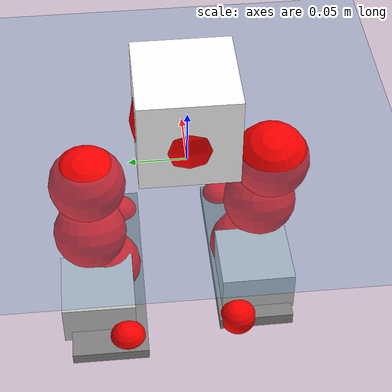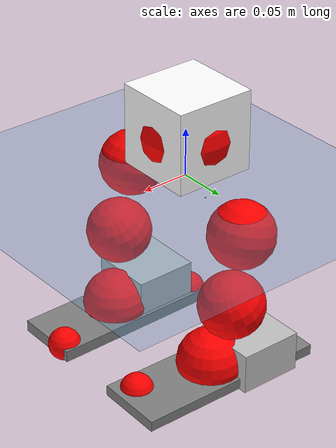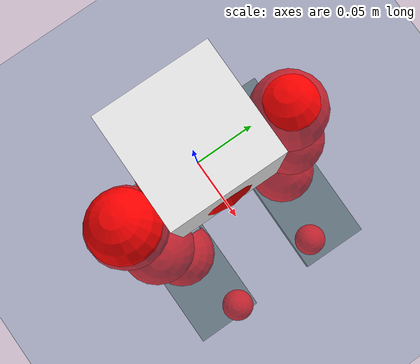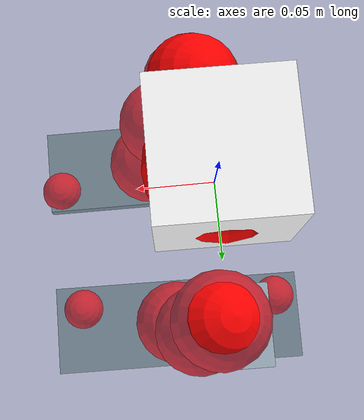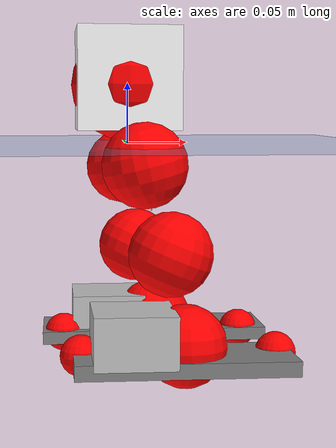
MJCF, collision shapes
<mujoco model="pi_12dof_release_v1">
  <compiler angle="radian" assetdir="assets" balanceinertia="true" inertiafromgeom="false"/>

  <option timestep="0.005" density="1.2" viscosity="2e-05"/>

  <size nkey="1"/>

  <visual>
    <quality shadowsize="8192"/>
    <map shadowclip="0.5"/>
  </visual>

  <default>
    <default class="/">
      <joint armature="0.01" damping="0.01" frictionloss="0.01"/>
      <geom contype="0" conaffinity="0" group="1" solref="-1000 -80"/>
      <site size="0.01 0.005 0.005" group="5"/>
      <general forcelimited="true" biastype="affine" gainprm="20" biasprm="0 -20 -0.5"/>
      <default class="foot">
        <geom size="0.0845 0.036 0.005" type="box" condim="6" group="4" priority="1" friction="0.9 0.2 0.2" solimp="0.015 1 0.005"/>
      </default>
      <default class="reward_collision_sphere">
        <geom group="5" rgba="1 0 0 1"/>
      </default>
    </default>
  </default>

  <asset>
    <texture type="skybox" colorspace="auto" name="//unnamed_texture_0" builtin="gradient" rgb1="0.95 0.95 0.95" rgb2="0.95 0.95 0.95" width="100" height="600"/>
    <texture type="2d" colorspace="auto" name="texplane" builtin="checker" rgb1="0.345 0.575 0.748" rgb2="0.345 0.575 0.748" markrgb="1 1 1" width="512" height="512"/>
    <material name="MatPlane" class="/" texture="texplane" texuniform="true" texrepeat="2 2" specular="0.9"/>
    <mesh name="baselink_1" class="/" file="baselink_1.STL"/>
    <mesh name="r_hip_pitch_link" class="/" file="r_hip_pitch_link.STL"/>
    <mesh name="r_hip_roll_link" class="/" file="r_hip_roll_link.STL"/>
    <mesh name="r_thigh_link" class="/" file="r_thigh_link.STL"/>
    <mesh name="r_calf_link" class="/" file="r_calf_link.STL"/>
    <mesh name="r_ankle_pitch_link" class="/" file="r_ankle_pitch_link.STL"/>
    <mesh name="r_ankle_roll_link" class="/" file="r_ankle_roll_link.STL"/>
    <mesh name="l_hip_pitch_link" class="/" file="l_hip_pitch_link.STL"/>
    <mesh name="l_hip_roll_link" class="/" file="l_hip_roll_link.STL"/>
    <mesh name="l_thigh_link" class="/" file="l_thigh_link.STL"/>
    <mesh name="l_calf_link" class="/" file="l_calf_link.STL"/>
    <mesh name="l_ankle_pitch_link" class="/" file="l_ankle_pitch_link.STL"/>
    <mesh name="l_ankle_roll_link" class="/" file="l_ankle_roll_link.STL"/>
  </asset>

  <worldbody>
    <geom name="floor" class="/" size="100 100 0.125" type="plane" group="0" material="MatPlane"/>
    <light name="toplight_shadow" class="/" pos="0 0 5" dir="0.0990148 0.0990148 -0.990148" type="directional" ambient="0.04 0.04 0.04" diffuse="0.55 0.55 0.55" specular="0.12 0.12 0.12"/>
    <light name="toplight_fill" class="/" pos="0 0 5" dir="0.0990148 0.0990148 -0.990148" type="directional" castshadow="false" ambient="0.04 0.04 0.04" diffuse="0.3 0.3 0.3" specular="0.08 0.08 0.08"/>
    <body name="trunk" pos="-0.00056266 0.00143681 0.0126989" quat="0.999983 -0.00336217 0.0022933 -0.00418995">
      <inertial pos="0.00329039 -0.00996644 0.0216237" quat="0.66735 0.0335459 0.0449855 0.742627" mass="1.18586" diaginertia="0.0191342 0.0030803 0.000115077"/>
      <joint name="//unnamed_joint_0" type="free"/>
      <geom name="//unnamed_geom_1" class="/" type="mesh" density="0" rgba="1 1 1 1" mesh="baselink_1"/>
      <geom name="//unnamed_geom_2" class="/" size="0.0420567 0.0420567 0.0420567" pos="0 0 0.0404009" type="box" rgba="1 1 1 1"/>
      <geom name="//unnamed_geom_3" class="reward_collision_sphere" size="0.0462624" pos="0 0 0.0353508"/>
      <site name="imu" class="/" pos="-0.00803215 -0.033947 0.046394" size="0.00841135"/>
      <camera name="track" class="/" pos="0 -1.66645 0" quat="0.707107 0.707107 0 0" mode="trackcom"/>
      <camera name="ego_camera" class="/" pos="0.0888874 0 0.0909021" quat="-0.5 -0.5 0.5 0.5"/>
      <body name="r_hip_pitch_link" pos="-0.00330106 -0.0231354 -0.0212126" quat="0.992185 0.000122119 -0.124779 -1.35008e-05">
        <inertial pos="0.0122329 -0.0469177 0.0121267" quat="-0.0408802 0.74491 -0.0168784 0.665697" mass="0.236497" diaginertia="0.000245042 4.42627e-05 2.96359e-06"/>
        <joint name="r_hip_pitch_joint" class="/" pos="0 0 0" axis="0.0211947 -0.999773 0.00238964" stiffness="0.0146782" range="-1.77906 1.30213" armature="0.00849929" damping="0.0227728" frictionloss="0.00792416"/>
        <geom name="//unnamed_geom_4" class="/" type="mesh" density="0" rgba="0.75294 0.75294 0.75294 1" mesh="r_hip_pitch_link"/>
        <geom name="//unnamed_geom_5" class="/" size="0.000420567 0.000420567 0.000420567" type="box" rgba="0.75294 0.75294 0.75294 1"/>
        <body name="r_hip_roll_link" pos="0.0099242 -0.0523421 -0.00903829" quat="0.999999 0.00104598 0.000263742 0.000155391">
          <inertial pos="0.00218714 0.000447934 -0.0318383" quat="0.708095 -0.0874697 -0.0677416 0.697397" mass="0.254514" diaginertia="0.000864658 0.000125927 5.35314e-06"/>
          <joint name="r_hip_roll_joint" class="/" pos="0 0 0" axis="-0.999107 -0.0385084 0.0174125" stiffness="0.00356078" range="-0.091379 0.484084" armature="0.0140267" damping="0.00721666" frictionloss="0.00543193"/>
          <geom name="//unnamed_geom_6" class="/" type="mesh" density="0" rgba="0.75294 0.75294 0.75294 1" mesh="r_hip_roll_link"/>
          <geom name="//unnamed_geom_7" class="/" size="0.000420567 0.000420567 0.000420567" type="box" rgba="0.75294 0.75294 0.75294 1"/>
          <geom name="//unnamed_geom_8" class="reward_collision_sphere" size="0.0336454"/>
          <body name="r_thigh_link" pos="-0.00355822 0.00156002 -0.0345438" quat="0.999999 0.000169275 5.13707e-05 -0.00118123">
            <inertial pos="0.0139022 0.0129907 -0.0258691" quat="0.73552 0.677496 0.00109282 0.00276574" mass="0.0674403" diaginertia="0.00032976 3.75019e-05 1.84493e-06"/>
            <joint name="r_thigh_joint" class="/" pos="0 0 0" axis="-0.00600155 0.000846472 -0.999982" range="-0.186133 0.392123" armature="0.013329" damping="0" frictionloss="0.0089404"/>
            <geom name="//unnamed_geom_9" class="/" type="mesh" density="0" rgba="0.75294 0.75294 0.75294 1" mesh="r_thigh_link"/>
            <geom name="//unnamed_geom_10" class="/" size="0.000420567 0.000420567 0.000420567" type="box" rgba="0.75294 0.75294 0.75294 1"/>
            <body name="r_calf_link" pos="0.00646856 0.00240734 -0.0380651" quat="0.946427 -0.00517507 0.322874 0.00141915">
              <inertial pos="0.00406998 0.000149979 -0.0323832" quat="0.997759 -0.0551544 -0.0378786 0.00081868" mass="0.423014" diaginertia="0.0084294 0.00144115 5.9141e-06"/>
              <joint name="r_calf_joint" class="/" pos="0 0 0" axis="-0.0116185 -0.999914 0.00606669" stiffness="0.0160729" range="-1.67617 0.525675" armature="0.00846807" damping="0.0207505" frictionloss="0.0084384"/>
              <geom name="//unnamed_geom_11" class="/" type="mesh" density="0" rgba="0.75294 0.75294 0.75294 1" mesh="r_calf_link"/>
              <geom name="//unnamed_geom_12" class="/" size="0.000420567 0.000420567 0.000420567" type="box" rgba="0.75294 0.75294 0.75294 1"/>
              <geom name="//unnamed_geom_13" class="reward_collision_sphere" size="0.0336454"/>
              <body name="r_ankle_pitch_link" pos="-0.000723741 0.00697269 -0.0713927" quat="0.979828 -0.00120686 -0.199832 0.00191393">
                <inertial pos="0.0110524 0.00376762 0.00352013" quat="0.0143925 0.712374 -0.00555321 0.701631" mass="0.0918999" diaginertia="0.000721045 9.89133e-05 3.65265e-06"/>
                <joint name="r_ankle_pitch_joint" class="/" pos="0 0 0" axis="0.00179021 -0.999311 -0.0370738" range="-1.17147 0.503731" armature="0.0102813" damping="0" frictionloss="0.00795589"/>
                <geom name="//unnamed_geom_14" class="/" type="mesh" density="0" rgba="0.75294 0.75294 0.75294 1" mesh="r_ankle_pitch_link"/>
                <geom name="//unnamed_geom_15" class="/" size="0.0328043 0.0336454 0.0210284" type="box" rgba="0.75294 0.75294 0.75294 1"/>
                <body name="r_ankle_roll_link" pos="0.101553 0.00296499 0.000191694" quat="1 0.000166229 -0.000119108 -0.000940504">
                  <inertial pos="-0.0256958 0.0115167 -0.0168279" quat="0.596436 0.450364 0.384337 0.541961" mass="0.357786" diaginertia="0.00300537 0.000410194 1.16221e-05"/>
                  <joint name="r_ankle_roll_joint" class="/" pos="0 0 0" axis="-0.999979 0.00254919 -0.00601965" range="0.121961 0.0146254" armature="0.0129501" damping="0.0283201" frictionloss="0.0133786"/>
                  <geom name="//unnamed_geom_16" class="/" type="mesh" density="0" rgba="0.75294 0.75294 0.75294 1" mesh="r_ankle_roll_link"/>
                  <geom name="//unnamed_geom_17" class="/" type="mesh" rgba="0.75294 0.75294 0.75294 1" mesh="r_ankle_roll_link"/>
                  <geom name="right_foot" class="foot" size="0.0882902 0.0342097 0.00615755" pos="-0.0604434 0 -0.0222205"/>
                  <geom name="//unnamed_geom_19" class="reward_collision_sphere" size="0.0336454" pos="-0.0592582 0 -0.0101002"/>
                  <geom name="//unnamed_geom_20" class="reward_collision_sphere" size="0.0168227" pos="0.0177775 0.0166645 -0.0202005"/>
                  <geom name="//unnamed_geom_21" class="reward_collision_sphere" size="0.0168227" pos="-0.14222 0.0166645 -0.0202005"/>
                  <site name="right_foot" class="foot" pos="-0.0604434 0 -0.0222205" size="0.00841135"/>
                </body>
              </body>
            </body>
          </body>
        </body>
      </body>
      <body name="l_hip_pitch_link" pos="-0.000680048 0.027457 -0.0250911" quat="0.992101 -0.00115009 -0.12543 0.000995483">
        <inertial pos="0.00430474 0.0564861 0.0126041" quat="-0.0556313 0.710767 0.0175572 0.701004" mass="0.252242" diaginertia="0.000348124 4.31581e-05 3.99641e-06"/>
        <joint name="l_hip_pitch_joint" class="/" pos="0 0 0" axis="-0.0126276 0.998632 -0.0507454" stiffness="0.0424421" range="-0.998144 1.87328" armature="0.00822842" damping="0.0509834" frictionloss="0.00583166"/>
        <geom name="//unnamed_geom_22" class="/" type="mesh" density="0" rgba="0.75294 0.75294 0.75294 1" mesh="l_hip_pitch_link"/>
        <geom name="//unnamed_geom_23" class="/" size="0.000420567 0.000420567 0.000420567" type="box" rgba="0.75294 0.75294 0.75294 1"/>
        <body name="l_hip_roll_link" pos="0.000757829 0.0577883 -0.0123704" quat="0.999991 -0.000197906 0.00430021 0.000216062">
          <inertial pos="-0.0158784 0.00882921 -0.0174375" quat="0.699011 -0.0753453 -0.0766694 0.706986" mass="0.189099" diaginertia="0.000549115 9.10696e-05 3.13378e-06"/>
          <joint name="l_hip_roll_joint" class="/" pos="0 0 0" axis="-0.999998 -0.00154235 -0.000967684" stiffness="0.0125163" range="-0.504828 0.252463" armature="0.0115821" damping="0" frictionloss="0.0085191"/>
          <geom name="//unnamed_geom_24" class="/" type="mesh" density="0" rgba="0.75294 0.75294 0.75294 1" mesh="l_hip_roll_link"/>
          <geom name="//unnamed_geom_25" class="/" size="0.000420567 0.000420567 0.000420567" type="box" rgba="0.75294 0.75294 0.75294 1"/>
          <geom name="//unnamed_geom_26" class="reward_collision_sphere" size="0.0336454"/>
          <body name="l_thigh_link" pos="0.00695595 0.00141862 -0.0276659" quat="0.999989 0.00137124 -0.00329207 -0.00300587">
            <inertial pos="0.0123592 -0.009116 -0.0110932" quat="0.66418 0.745592 0.00415001 -0.0542357" mass="0.0747783" diaginertia="0.00032689 4.51299e-05 1.97296e-06"/>
            <joint name="l_thigh_joint" class="/" pos="0 0 0" axis="0.00168728 0.000532842 -0.999998" stiffness="0.00933825" range="-0.623763 0.309129" armature="0.00993495" damping="0.0186027" frictionloss="0.00289874"/>
            <geom name="//unnamed_geom_27" class="/" type="mesh" density="0" rgba="0.75294 0.75294 0.75294 1" mesh="l_thigh_link"/>
            <geom name="//unnamed_geom_28" class="/" size="0.000420567 0.000420567 0.000420567" type="box" rgba="0.75294 0.75294 0.75294 1"/>
            <body name="l_calf_link" pos="-0.013777 0.000225027 -0.0464535" quat="0.947668 1.31984e-05 0.319256 6.35279e-05">
              <inertial pos="0.0100202 0.0101764 -0.0396908" quat="0.998273 -0.0337162 -0.0144226 0.0458927" mass="0.478283" diaginertia="0.00588822 0.00120051 4.45084e-06"/>
              <joint name="l_calf_joint" class="/" pos="0 0 0" axis="0.0311092 0.999503 -0.00518698" stiffness="0.0496387" range="-0.437718 1.42109" armature="0.00746612" damping="0.0451819" frictionloss="0.00523194"/>
              <geom name="//unnamed_geom_29" class="/" type="mesh" density="0" rgba="0.75294 0.75294 0.75294 1" mesh="l_calf_link"/>
              <geom name="//unnamed_geom_30" class="/" size="0.000420567 0.000420567 0.000420567" type="box" rgba="0.75294 0.75294 0.75294 1"/>
              <geom name="//unnamed_geom_31" class="reward_collision_sphere" size="0.0336454"/>
              <body name="l_ankle_pitch_link" pos="0.000738627 -0.00320236 -0.0685297" quat="0.980042 0.000220123 -0.19879 -7.39325e-05">
                <inertial pos="0.000732353 0.00548306 0.0109652" quat="-0.0201327 0.716376 0.0335359 0.696617" mass="0.127196" diaginertia="0.00065173 9.11403e-05 3.98442e-06"/>
                <joint name="l_ankle_pitch_joint" class="/" pos="0 0 0" axis="0.00138238 0.999998 0.0014225" range="-0.350791 1.31663" armature="0.0107964" damping="0.072436" frictionloss="0.0123685"/>
                <geom name="//unnamed_geom_32" class="/" type="mesh" density="0" rgba="0.75294 0.75294 0.75294 1" mesh="l_ankle_pitch_link"/>
                <geom name="//unnamed_geom_33" class="/" size="0.0328043 0.0336454 0.0210284" type="box" rgba="0.75294 0.75294 0.75294 1"/>
                <body name="l_ankle_roll_link" pos="0.100955 -0.00900098 0.00863022" quat="0.999976 -0.00606713 -0.00288035 -0.00166854">
                  <inertial pos="-0.0319362 -0.00141652 -0.00818214" quat="0.530177 0.408916 0.476201 0.570028" mass="0.287244" diaginertia="0.00244725 0.000348694 9.72819e-06"/>
                  <joint name="l_ankle_roll_joint" class="/" pos="0 0 0" axis="-0.999985 -0.0017967 -0.00510134" stiffness="0.00991756" range="-0.175846 0.426334" armature="0.00830779" damping="0.0471247" frictionloss="0.0108018"/>
                  <geom name="//unnamed_geom_34" class="/" type="mesh" density="0" rgba="0.75294 0.75294 0.75294 1" mesh="l_ankle_roll_link"/>
                  <geom name="//unnamed_geom_35" class="/" type="mesh" rgba="0.75294 0.75294 0.75294 1" mesh="l_ankle_roll_link"/>
                  <geom name="left_foot" class="foot" size="0.100535 0.0350592 0.00554738" pos="-0.0604434 0 -0.0222205"/>
                  <geom name="//unnamed_geom_37" class="reward_collision_sphere" size="0.0336454" pos="-0.0592582 0 -0.0101002"/>
                  <geom name="//unnamed_geom_38" class="reward_collision_sphere" size="0.0168227" pos="0.0177775 -0.0166645 -0.0202005"/>
                  <geom name="//unnamed_geom_39" class="reward_collision_sphere" size="0.0168227" pos="-0.14222 -0.0166645 -0.0202005"/>
                  <site name="left_foot" class="foot" pos="-0.0604434 0 -0.0222205" size="0.00841135"/>
                </body>
              </body>
            </body>
          </body>
        </body>
      </body>
    </body>
  </worldbody>

  <contact>
    <pair class="/" geom1="floor" geom2="right_foot" name="//unnamed_contact_1"/>
    <pair class="/" geom1="floor" geom2="left_foot" name="//unnamed_contact_0"/>
  </contact>

  <actuator>
    <general name="r_hip_pitch_joint" class="/" joint="r_hip_pitch_joint" forcerange="-10.7019 10.7019" gainprm="22.6002" biasprm="0 -22.6002 -0.53724"/>
    <general name="r_hip_roll_joint" class="/" joint="r_hip_roll_joint" forcerange="-26.4948 26.4948" gainprm="22.6002" biasprm="0 -22.6002 -0.53724"/>
    <general name="r_thigh_joint" class="/" joint="r_thigh_joint" forcerange="-16.7616 16.7616" gainprm="22.6002" biasprm="0 -22.6002 -0.53724"/>
    <general name="r_calf_joint" class="/" joint="r_calf_joint" forcerange="-8.5242 8.5242" gainprm="22.6002" biasprm="0 -22.6002 -0.53724"/>
    <general name="r_ankle_pitch_joint" class="/" joint="r_ankle_pitch_joint" forcerange="-20.9913 20.9913" gainprm="22.6002" biasprm="0 -22.6002 -0.53724"/>
    <general name="r_ankle_roll_joint" class="/" joint="r_ankle_roll_joint" forcerange="-26.3955 26.3955" gainprm="22.6002" biasprm="0 -22.6002 -0.53724"/>
    <general name="l_hip_pitch_joint" class="/" joint="l_hip_pitch_joint" forcerange="-16.9585 16.9585" gainprm="22.6002" biasprm="0 -22.6002 -0.53724"/>
    <general name="l_hip_roll_joint" class="/" joint="l_hip_roll_joint" forcerange="-16.6943 16.6943" gainprm="22.6002" biasprm="0 -22.6002 -0.53724"/>
    <general name="l_thigh_joint" class="/" joint="l_thigh_joint" forcerange="-13.2912 13.2912" gainprm="22.6002" biasprm="0 -22.6002 -0.53724"/>
    <general name="l_calf_joint" class="/" joint="l_calf_joint" forcerange="-18.4499 18.4499" gainprm="22.6002" biasprm="0 -22.6002 -0.53724"/>
    <general name="l_ankle_pitch_joint" class="/" joint="l_ankle_pitch_joint" forcerange="-13.4878 13.4878" gainprm="22.6002" biasprm="0 -22.6002 -0.53724"/>
    <general name="l_ankle_roll_joint" class="/" joint="l_ankle_roll_joint" forcerange="-16.6371 16.6371" gainprm="22.6002" biasprm="0 -22.6002 -0.53724"/>
  </actuator>

  <sensor>
    <gyro site="imu" name="imu_angular_velocity"/>
    <velocimeter site="imu" name="imu_linear_velocity"/>
    <framelinvel objtype="site" objname="left_foot" name="left_foot_global_linear_velocity"/>
    <framelinvel objtype="site" objname="right_foot" name="right_foot_global_linear_velocity"/>
  </sensor>

  <keyframe>
    <key name="home" qpos="0 0 0.291 1 0 0 0 0.4 0 0 -0.8 0.4 0 -0.4 0 0 0.8 -0.4 0"/>
  </keyframe>
</mujoco>
